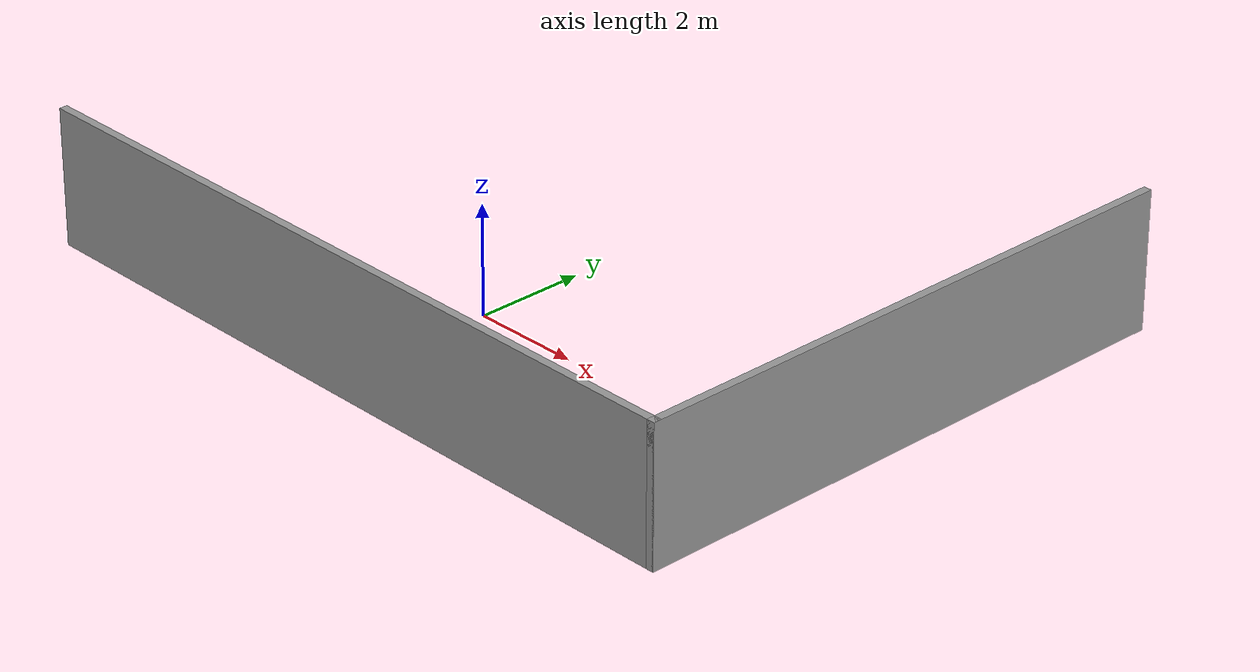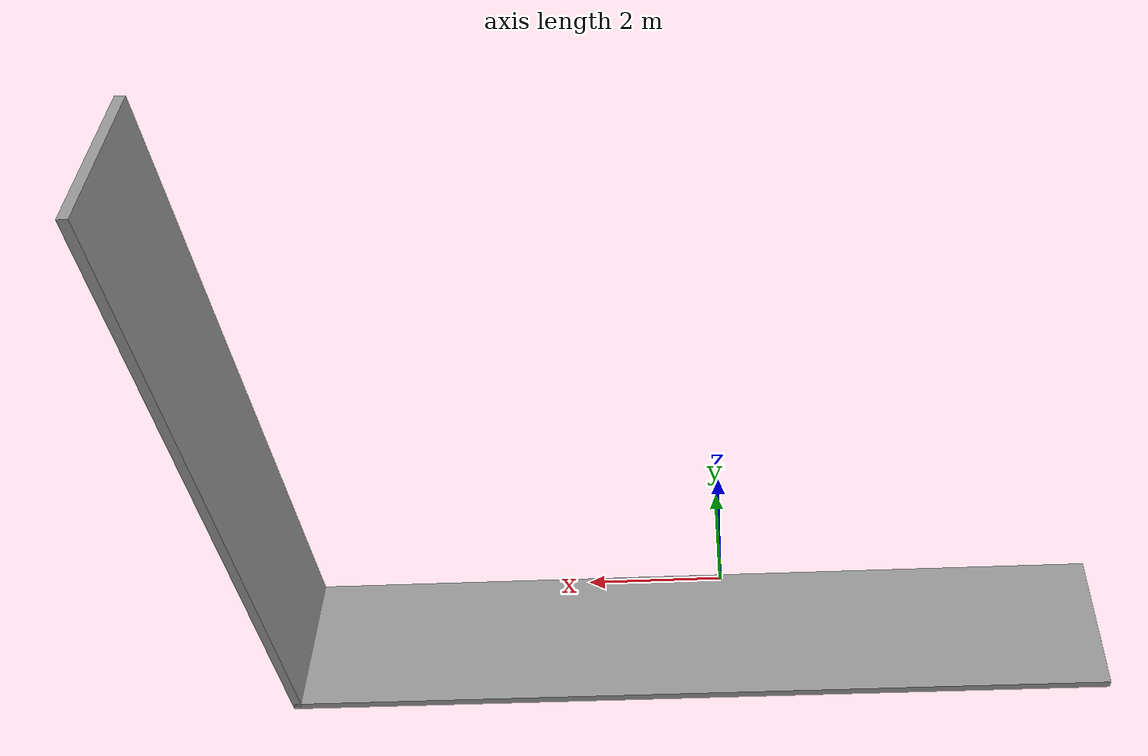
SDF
<?xml version='1.0'?>
<sdf version='1.7'>
  <model name='trial'>
    <pose>0.495 1.98 0 0 -0 0</pose>
    <link name='Wall_0'>
      <collision name='Wall_0_Collision'>
        <geometry>
          <box>
            <size>14 0.15 2.5</size>
          </box>
        </geometry>
        <pose>0 0 1.25 0 -0 0</pose>
      </collision>
      <visual name='Wall_0_Visual'>
        <pose>0 0 1.25 0 -0 0</pose>
        <geometry>
          <box>
            <size>14 0.15 2.5</size>
          </box>
        </geometry>
        <material>
          <script>
            <uri>file://media/materials/scripts/gazebo.material</uri>
            <name>Gazebo/Grey</name>
          </script>
          <ambient>1 1 1 1</ambient>
        </material>
        <meta>
          <layer>0</layer>
        </meta>
      </visual>
      <pose>-0 -5.3 0 0 -0 0</pose>
    </link>
    <link name='Wall_1'>
      <collision name='Wall_1_Collision'>
        <geometry>
          <box>
            <size>0.15 0.15 2.5</size>
          </box>
        </geometry>
        <pose>0 0 1.25 0 -0 0</pose>
      </collision>
      <visual name='Wall_1_Visual'>
        <pose>0 0 1.25 0 -0 0</pose>
        <geometry>
          <box>
            <size>0.15 0.15 2.5</size>
          </box>
        </geometry>
        <material>
          <script>
            <uri>file://media/materials/scripts/gazebo.material</uri>
            <name>Gazebo/Grey</name>
          </script>
          <ambient>1 1 1 1</ambient>
        </material>
        <meta>
          <layer>0</layer>
        </meta>
      </visual>
      <pose>6.925 -5.3 0 0 -0 0</pose>
    </link>
    <link name='Wall_2'>
      <collision name='Wall_2_Collision'>
        <geometry>
          <box>
            <size>10.75 0.15 2.5</size>
          </box>
        </geometry>
        <pose>0 0 1.25 0 -0 0</pose>
      </collision>
      <visual name='Wall_2_Visual'>
        <pose>0 0 1.25 0 -0 0</pose>
        <geometry>
          <box>
            <size>10.75 0.15 2.5</size>
          </box>
        </geometry>
        <material>
          <script>
            <uri>file://media/materials/scripts/gazebo.material</uri>
            <name>Gazebo/Grey</name>
          </script>
          <ambient>1 1 1 1</ambient>
        </material>
        <meta>
          <layer>0</layer>
        </meta>
      </visual>
      <pose>6.925 0 0 0 -0 1.5708</pose>
    </link>
    <static>1</static>
  </model>
</sdf>
